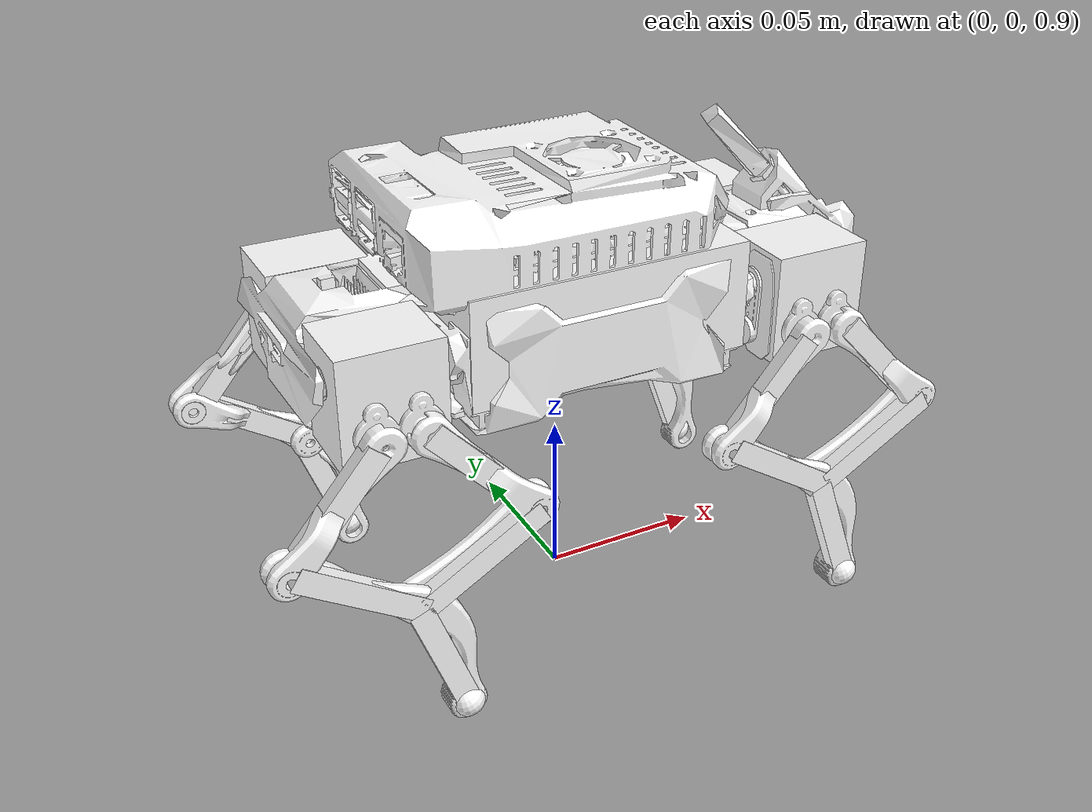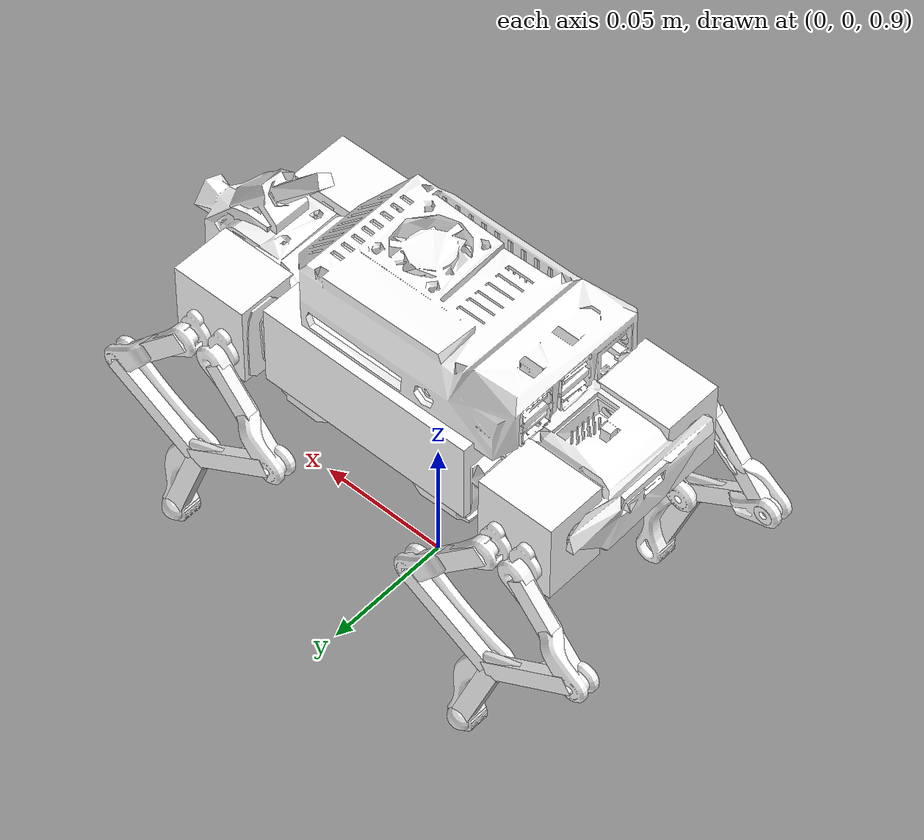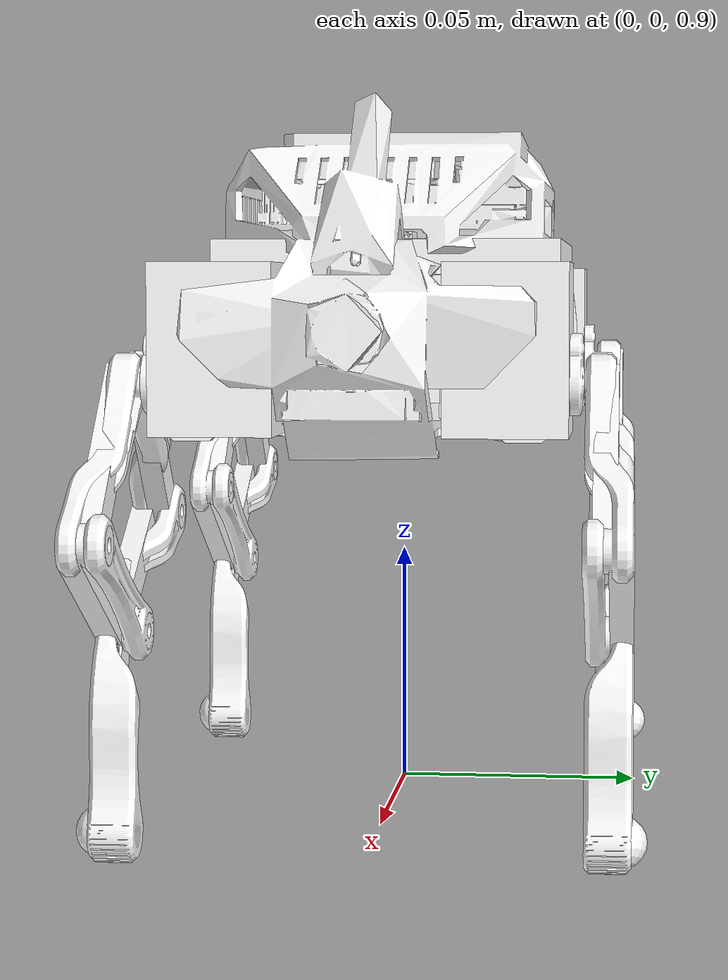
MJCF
<mujoco model="wavego">
  <compiler angle="radian" meshdir="meshes/"/>
  <!--size njmax="500" nconmax="100"/-->
  <statistic extent="2" center="0 0 1"/>

  <option timestep="0.00555"/>

  <default>
    <motor ctrlrange="-1 1" ctrllimited="true"/>
    <default class="body">
      <geom type="capsule" condim="1" friction="1.0 0.05 0.05" solimp=".9 .99 .003" solref=".015 1"/>
      <joint type="hinge" damping="0.1" stiffness="5" armature=".007" limited="true" solimplimit="0 .99 .01"/>
      <site size=".04" group="3"/>
      <default class="force-torque">
        <site type="box" size=".01 .01 .02" rgba="1 0 0 1" />
      </default>
      <default class="touch">
        <site type="capsule" rgba="0 0 1 .3"/>
      </default>
    </default>
  </default>
  <asset>
    <mesh name="trunk" file="trunk.STL"/>
    <mesh name="fl_l0" file="fl_l0.STL"/>
    <mesh name="fl_l1" file="fl_l1.STL"/>
    <mesh name="fl_l2" file="fl_l2.STL"/>
    <mesh name="fl_l3" file="fl_l3.STL"/>
    <mesh name="fl_l4" file="fl_l4.STL"/>
    <mesh name="rl_l0" file="rl_l0.STL"/>
    <mesh name="rl_l1" file="rl_l1.STL"/>
    <mesh name="rl_l2" file="rl_l2.STL"/>
    <mesh name="rl_l3" file="rl_l3.STL"/>
    <mesh name="rl_l4" file="rl_l4.STL"/>
    <mesh name="fr_l0" file="fr_l0.STL"/>
    <mesh name="fr_l1" file="fr_l1.STL"/>
    <mesh name="fr_l2" file="fr_l2.STL"/>
    <mesh name="fr_l3" file="fr_l3.STL"/>
    <mesh name="fr_l4" file="fr_l4.STL"/>
    <mesh name="rr_l0" file="rr_l0.STL"/>
    <mesh name="rr_l1" file="rr_l1.STL"/>
    <mesh name="rr_l2" file="rr_l2.STL"/>
    <mesh name="rr_l3" file="rr_l3.STL"/>
    <mesh name="rr_l4" file="rr_l4.STL"/>
  </asset>
  <worldbody>
  	<light cutoff="4.0" diffuse="1 1 1" dir="-0.9 -0.9 -2.5" directional="true" exponent="20" pos="0.9 0.9 2.5" specular="0 0 0"/>
		<geom name="ground" pos="0 0 -0.15" rgba="0.25 0.26 0.25 1" size="10 10 2" type="plane" contype="1"/>
    <body name="trunk" pos="0 0 1" childclass="body">
      <inertial pos="2.4203e-06 -0.0015067 0.0062183" quat="-0.000982041 0.708496 -0.00111992 0.705713" mass="0.37688" diaginertia="2.78701e-04 2.15519e-04 6.567e-05"/>
      <freejoint name="root"/>
      <geom type="mesh" contype="0" conaffinity="0" group="1" rgba="1 1 1 1" mesh="trunk"/>
      <geom size="0.04263 0.0351 0.0163" type="box" rgba="1 1 1 1"/>
      <body name="fl_l0" pos="0.046331 0.026081 0">
        <inertial pos="0.01662 -0.00013721 -0.0063401" quat="0.728017 0.0635353 0.0557697 0.680326" mass="0.03069" diaginertia="1.11561e-06 8.86123e-07 7.54951e-07"/>
        <joint name="fl_j0" pos="0 0 0" axis="-1 0 0" limited="true" range="-3.14 3.14"/>
        <geom type="mesh" contype="0" conaffinity="0" group="1" rgba="1 1 1 1" mesh="fl_l0"/>
        <geom size="0.01489 0.01175 0.0163" pos="0.018 0 -0.005" type="box" rgba="1 1 1 1"/>
        <body name="fl_l1" pos="0.011404 0.02025 -0.0114">
          <inertial pos="-0.01438 -0.0012128 -0.01438" quat="0.666624 0.304622 0.235823 0.638127" mass="0.00349" diaginertia="2.74574e-07 2.6656e-07 1.65665e-08"/>
          <joint name="fl_j1" pos="0 0 0" axis="0 -1 0" limited="true" range="-3.14 3.14"/>
          <geom type="mesh" contype="0" conaffinity="0" group="1" rgba="1 1 1 1" mesh="fl_l1"/>
          <geom size="0.0035 0.00225 0.02" pos="-0.015 -0.002 -0.015" quat="0.939373 0 0.342898 0" type="box" rgba="1 1 1 1"/>
          <body name="fl_l2" pos="-0.028284 0.0034 -0.028284">
            <inertial pos="0.032474 -0.0038043 -0.027866" quat="0.606307 -0.252776 -0.226487 0.719166" mass="0.00406" diaginertia="1.37266e-06 1.29325e-06 1.05293e-07"/>
            <joint name="fl_j2" pos="0 0 0" axis="0 1 0" limited="true" range="-3.14 3.14"/>
            <geom type="mesh" contype="0" conaffinity="0" group="1" rgba="1 1 1 1" mesh="fl_l2"/>
            <geom size="0.0035 0.00225 0.02" pos="0.018 -0.002 -0.01" quat="0.877583 0 -0.479426 0" type="box" rgba="1 1 1 1"/>
            <geom size="0.0035 0.00225 0.02" pos="0.04 -0.002 -0.04" quat="0.984727 0 -0.174108 0" type="box" rgba="1 1 1 1"/>
            <geom type="sphere" size="0.005" pos="0.046 -0.002 -0.057" quat="0.984727 0 -0.174108 0" rgba="1 1 1 1"/>
            <body name="fl_l3" pos="0.034277 0 -0.020257">
              <inertial pos="0.013452 -0.0063583 0.0079001" quat="0.613681 0.351277 0.351277 0.613681" mass="0.00255" diaginertia="2.2227e-07 2.14535e-07 1.0078e-08"/>
              <joint name="fl_j3" pos="0 0 0" axis="0 1 0" limited="true" range="-3.14 3.14"/>
              <geom type="mesh" contype="0" conaffinity="0" group="1" rgba="1 1 1 1" mesh="fl_l3"/>
              <geom size="0.0035 0.00225 0.02" pos="0.018 -0.002 0.01" quat="0.865324 0 0.501213 0" type="box" rgba="1 1 1 1"/>
              <body name="fl_l4" pos="0.034491 0 0.020257">
                <inertial pos="-0.013905 -0.0046128 0.013905" quat="0.235823 0.638127 0.666624 0.304622" mass="0.00349" diaginertia="2.74574e-07 2.6656e-07 1.65665e-08"/>
                <joint name="fl_j4" pos="0 0 0" axis="0 -1 0" limited="true" range="-3.14 3.14"/>
                <geom type="mesh" contype="0" conaffinity="0" group="1" rgba="1 1 1 1" mesh="fl_l4"/>
                <geom size="0.0035 0.00225 0.02" pos="-0.015 -0.005 0.015" quat="0.929589 0 -0.368598 0" type="box" rgba="1 1 1 1"/>
              </body>
            </body>
          </body>
        </body>
      </body>
      <body name="rl_l0" pos="-0.047914 0.026081 0">
        <inertial pos="-0.016948 -0.00013716 -0.0063401" quat="0.680663 -0.0530179 -0.0607376 0.728147" mass="0.03069" diaginertia="1.1156e-06 8.8578e-07 7.55303e-07"/>
        <joint name="rl_j0" pos="0 0 0" axis="1 0 0" limited="true" range="-3.14 3.14"/>
        <geom type="mesh" contype="0" conaffinity="0" group="1" rgba="1 1 1 1" mesh="rl_l0"/>
        <geom size="0.01489 0.01175 0.0163" pos="-0.018 0 -0.005" type="box" rgba="1 1 1 1"/>
        <body name="rl_l1" pos="-0.023591 0.02025 -0.0114">
          <inertial pos="-0.01438 -0.0012128 -0.01438" quat="0.666624 0.304624 0.235822 0.638126" mass="0.00349" diaginertia="2.74574e-07 2.6656e-07 1.65662e-08"/>
          <joint name="rl_j1" pos="0 0 0" axis="0 1 0" limited="true" range="-3.14 3.14"/>
          <geom type="mesh" contype="0" conaffinity="0" group="1" rgba="1 1 1 1" mesh="rl_l1"/>
          <geom size="0.0035 0.00225 0.02" pos="-0.015 -0.002 -0.015" quat="0.939373 0 0.342898 0" type="box" rgba="1 1 1 1"/>
          <body name="rl_l2" pos="-0.028284 0.0034001 -0.028284">
            <inertial pos="0.032474 -0.0038044 -0.027866" quat="0.606308 -0.252776 -0.226486 0.719165" mass="0.00406" diaginertia="1.37266e-06 1.29325e-06 1.05293e-07"/>
            <joint name="rl_j2" pos="0 0 0" axis="0 1 0" limited="true" range="-3.14 3.14"/>
            <geom type="mesh" contype="0" conaffinity="0" group="1" rgba="1 1 1 1" mesh="rl_l2"/>
            <geom size="0.0035 0.00225 0.02" pos="0.018 -0.002 -0.01" quat="0.877583 0 -0.479426 0" type="box" rgba="1 1 1 1"/>
            <geom size="0.0035 0.00225 0.02" pos="0.04 -0.002 -0.04" quat="0.984727 0 -0.174108 0" type="box" rgba="1 1 1 1"/>
            <geom type="sphere" size="0.005" pos="0.046 -0.002 -0.057" quat="0.984727 0 -0.174108 0" rgba="1 1 1 1"/>
            <body name="rl_l3" pos="0.034277 0 -0.020257">
              <inertial pos="0.013452 -0.0063583 0.0079001" quat="0.613681 0.351277 0.351277 0.613681" mass="0.00255" diaginertia="2.2227e-07 2.14535e-07 1.0078e-08"/>
              <joint name="rl_j3" pos="0 0 0" axis="0 1 0" limited="true" range="-3.14 3.14"/>
              <geom type="mesh" contype="0" conaffinity="0" group="1" rgba="1 1 1 1" mesh="rl_l3"/>
              <geom size="0.0035 0.00225 0.02" pos="0.018 -0.002 0.01" quat="0.865324 0 0.501213 0" type="box" rgba="1 1 1 1"/>
              <body name="rl_l4" pos="0.034491 0 0.020257">
                <inertial pos="-0.013905 -0.0046128 0.013905" quat="0.235823 0.638127 0.666624 0.304622" mass="0.00349" diaginertia="2.74574e-07 2.6656e-07 1.65665e-08"/>
                <joint name="rl_j4" pos="0 0 0" axis="0 -1 0" limited="true" range="-3.14 3.14"/>
                <geom type="mesh" contype="0" conaffinity="0" group="1" rgba="1 1 1 1" mesh="rl_l4"/>
                <geom size="0.0035 0.00225 0.02" pos="-0.015 -0.005 0.015" quat="0.929589 0 -0.368598 0" type="box" rgba="1 1 1 1"/>
              </body>
            </body>
          </body>
        </body>
      </body>
      <body name="fr_l0" pos="0.046344 -0.028919 0">
        <inertial pos="0.016609 0.00013716 -0.0063401" quat="0.680663 0.0530179 0.0607376 0.728147" mass="0.03069" diaginertia="1.1156e-06 8.8578e-07 7.55303e-07"/>
        <joint name="fr_j0" pos="0 0 0" axis="-1 0 0" limited="true" range="-3.14 3.14"/>
        <geom type="mesh" contype="0" conaffinity="0" group="1" rgba="1 1 1 1" mesh="fr_l0"/>
        <geom size="0.01489 0.01175 0.0163" pos="0.018 0 -0.005" type="box" rgba="1 1 1 1"/>
        <body name="fr_l1" pos="0.011391 -0.02025 -0.0114">
          <inertial pos="-0.01438 0.0012129 -0.01438" quat="0.638127 0.235823 0.304622 0.666624" mass="0.00349" diaginertia="2.74574e-07 2.6656e-07 1.65665e-08"/>
          <joint name="fr_j1" pos="0 0 0" axis="0 -1 0" limited="true" range="-3.14 3.14"/>
          <geom type="mesh" contype="0" conaffinity="0" group="1" rgba="1 1 1 1" mesh="fr_l1"/>
          <geom size="0.0035 0.00225 0.02" pos="-0.015 0.002 -0.015" quat="0.939373 0 0.342898 0" type="box" rgba="1 1 1 1"/>
          <body name="fr_l2" pos="-0.028284 -0.0033999 -0.028284">
            <inertial pos="0.032474 0.0038043 -0.027866" quat="0.719167 -0.226487 -0.252776 0.606306" mass="0.00406" diaginertia="1.37266e-06 1.29325e-06 1.05293e-07"/>
            <joint name="fr_j2" pos="0 0 0" axis="0 -1 0" limited="true" range="-3.14 3.14"/>
            <geom type="mesh" contype="0" conaffinity="0" group="1" rgba="1 1 1 1" mesh="fr_l2"/>
            <geom size="0.0035 0.00225 0.02" pos="0.018 0.002 -0.01" quat="0.877583 0 -0.479426 0" type="box" rgba="1 1 1 1"/>
            <geom size="0.0035 0.00225 0.02" pos="0.04 0.002 -0.04" quat="0.984727 0 -0.174108 0" type="box" rgba="1 1 1 1"/>
            <geom type="sphere" size="0.005" pos="0.046 0.002 -0.057" quat="0.984727 0 -0.174108 0" rgba="1 1 1 1"/>
            <body name="fr_l3" pos="0.034277 0 -0.020257">
              <inertial pos="0.013452 0.0063582 0.0079002" quat="0.613682 0.351275 0.351275 0.613682" mass="0.00255" diaginertia="2.2227e-07 2.14536e-07 1.00779e-08"/>
              <joint name="fr_j3" pos="0 0 0" axis="0 -1 0" limited="true" range="-3.14 3.14"/>
              <geom type="mesh" contype="0" conaffinity="0" group="1" rgba="1 1 1 1" mesh="fr_l3"/>
              <geom size="0.0035 0.00225 0.02" pos="0.018 0.002 0.01" quat="0.865324 0 0.501213 0" type="box" rgba="1 1 1 1"/>
              <body name="fr_l4" pos="0.034491 0 0.020257">
                <inertial pos="-0.013905 0.0046129 0.013905" quat="0.304624 0.666624 0.638126 0.235822" mass="0.00349" diaginertia="2.74574e-07 2.6656e-07 1.65662e-08"/>
                <joint name="fr_j4" pos="0 0 0" axis="0 -1 0" limited="true" range="-3.14 3.14"/>
                <geom type="mesh" contype="0" conaffinity="0" group="1" rgba="1 1 1 1" mesh="fr_l4"/>
                <geom size="0.0035 0.00225 0.02" pos="-0.015 0.005 0.015" quat="0.929589 0 -0.368598 0" type="box" rgba="1 1 1 1"/>
              </body>
            </body>
          </body>
        </body>
      </body>
      <body name="rr_l0" pos="-0.047914 -0.028919 0">
        <inertial pos="-0.016946 0.00013722 -0.0063401" quat="0.728017 -0.0635353 -0.0557697 0.680326" mass="0.03069" diaginertia="1.11561e-06 8.86123e-07 7.54951e-07"/>
        <joint name="rr_j0" pos="0 0 0" axis="1 0 0" limited="true" range="-3.14 3.14"/>
        <geom type="mesh" contype="0" conaffinity="0" group="1" rgba="1 1 1 1" mesh="rr_l0"/>
        <geom size="0.01489 0.01175 0.0163" pos="-0.018 0 -0.005" type="box" rgba="1 1 1 1"/>
        <body name="rr_l1" pos="-0.023591 -0.02025 -0.0114">
          <inertial pos="-0.01438 0.0012128 -0.01438" quat="0.638127 0.235823 0.304622 0.666624" mass="0.00349" diaginertia="2.74574e-07 2.6656e-07 1.65665e-08"/>
          <joint name="rr_j1" pos="0 0 0" axis="0 -1 0" limited="true" range="-3.14 3.14"/>
          <geom type="mesh" contype="0" conaffinity="0" group="1" rgba="1 1 1 1" mesh="rr_l1"/>
          <geom size="0.0035 0.00225 0.02" pos="-0.015 0.002 -0.015" quat="0.939373 0 0.342898 0" type="box" rgba="1 1 1 1"/>
          <body name="rr_l2" pos="-0.028284 -0.0034 -0.028284">
            <inertial pos="0.032474 0.0038044 -0.027866" quat="0.719166 -0.226487 -0.252776 0.606307" mass="0.00406" diaginertia="1.37266e-06 1.29325e-06 1.05293e-07"/>
            <joint name="rr_j2" pos="0 0 0" axis="0 1 0" limited="true" range="-3.14 3.14"/>
            <geom type="mesh" contype="0" conaffinity="0" group="1" rgba="1 1 1 1" mesh="rr_l2"/>
            <geom size="0.0035 0.00225 0.02" pos="0.018 0.002 -0.01" quat="0.877583 0 -0.479426 0" type="box" rgba="1 1 1 1"/>
            <geom size="0.0035 0.00225 0.02" pos="0.04 0.002 -0.04" quat="0.984727 0 -0.174108 0" type="box" rgba="1 1 1 1"/>
            <geom type="sphere" size="0.005" pos="0.046 0.002 -0.057" quat="0.984727 0 -0.174108 0" rgba="1 1 1 1"/>
            <body name="rr_l3" pos="0.034277 0 -0.020257">
              <inertial pos="0.013452 0.0063583 0.0079002" quat="0.613682 0.351275 0.351275 0.613682" mass="0.00255" diaginertia="2.2227e-07 2.14536e-07 1.00779e-08"/>
              <joint name="rr_j3" pos="0 0 0" axis="0 -1 0" limited="true" range="-3.14 3.14"/>
              <geom type="mesh" contype="0" conaffinity="0" group="1" rgba="1 1 1 1" mesh="rr_l3"/>
              <geom size="0.0035 0.00225 0.02" pos="0.018 0.002 0.01" quat="0.865324 0 0.501213 0" type="box" rgba="1 1 1 1"/>
              <body name="rr_l4" pos="0.034491 0 0.020257">
                <inertial pos="-0.013905 0.0046128 0.013905" quat="0.304622 0.666624 0.638127 0.235823" mass="0.00349" diaginertia="2.74574e-07 2.6656e-07 1.65665e-08"/>
                <joint name="rr_j4" pos="0 0 0" axis="0 -1 0" limited="true" range="-3.14 3.14"/>
                <geom type="mesh" contype="0" conaffinity="0" group="1" rgba="1 1 1 1" mesh="rr_l4"/>
                <geom size="0.0035 0.00225 0.02" pos="-0.015 0.005 0.015" quat="0.929589 0 -0.368598 0" type="box" rgba="1 1 1 1"/>
              </body>
            </body>
          </body>
        </body>
      </body>
    </body>
  </worldbody>
  <equality>
    <connect name="eq_fl" active="true" body1="fl_l0" body2="fl_l4" anchor="0.02359 0.02025 -0.0114"/>
  </equality>
  <equality>
    <connect name="eq_fr" active="true" body1="fr_l0" body2="fr_l4" anchor="0.02359 -0.02025 -0.0114"/>
  </equality>
  <equality>
    <connect name="eq_rl" active="true" body1="rl_l0" body2="rl_l4" anchor="-0.01139 0.02025 -0.0114"/>
  </equality>
  <equality>
    <connect name="eq_rr" active="true" body1="rr_l0" body2="rr_l4" anchor="-0.01139 -0.02025 -0.0114"/>
  </equality>
</mujoco>
